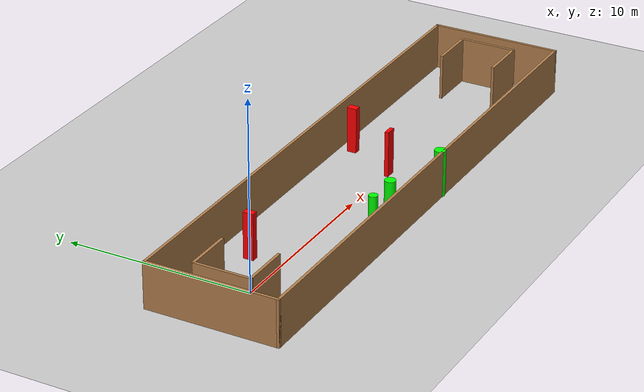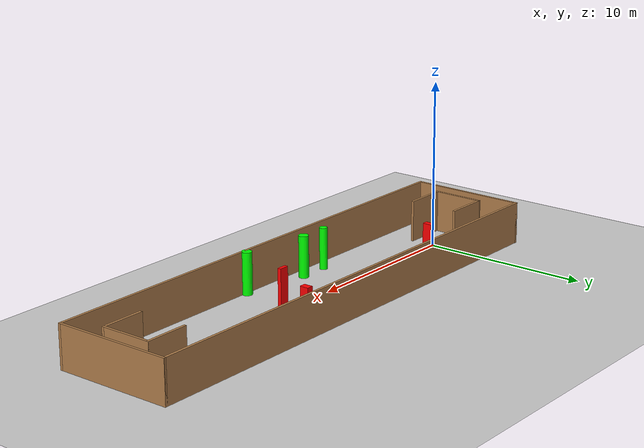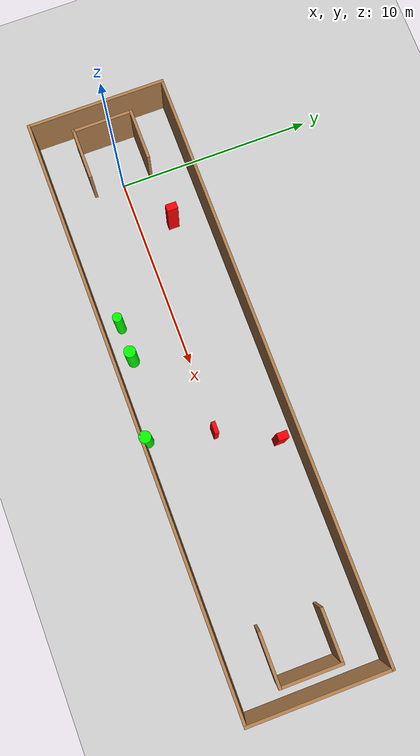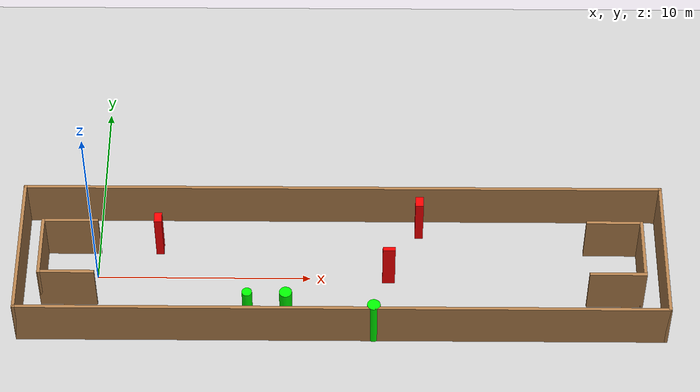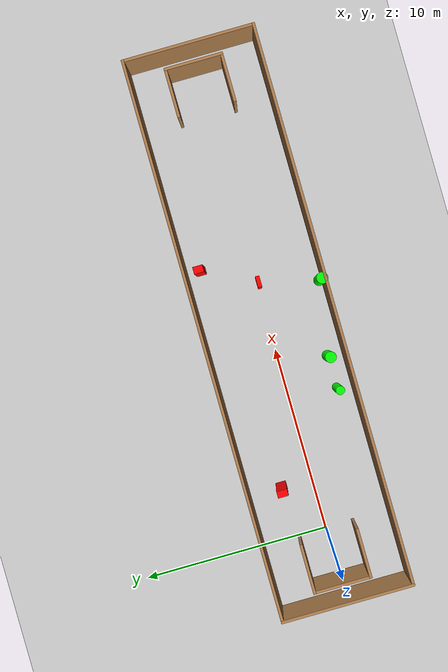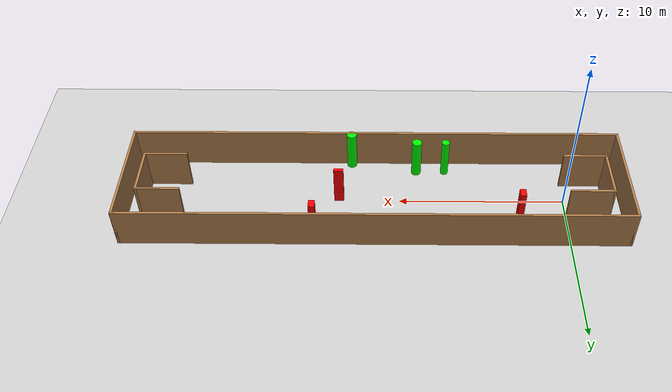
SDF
<sdf version="1.7">
 <world name="default">
  <light name="sun" type="directional">
   <pose>0 0 10 0 -0 0</pose>
   <diffuse>0.8 0.8 0.8 1</diffuse>
   <specular>0.2 0.2 0.2 1</specular>
   <attenuation>
    <range>1000</range>
    <constant>0.9</constant>
    <linear>0.01</linear>
    <quadratic>0.001</quadratic>
   </attenuation>
   <direction>-0.5 0.1 -0.9</direction>
   <spot><inner_angle>0</inner_angle><outer_angle>0</outer_angle><falloff>0</falloff></spot>
  </light>
  <model name="ground_plane">
   <static>1</static>
   <link name="link">
    <collision name="collision">
     <geometry><plane><normal>0 0 1</normal><size>100 100</size></plane></geometry>
     <surface>
      <contact><collide_bitmask>65535</collide_bitmask></contact>
      <friction><ode><mu>100</mu><mu2>50</mu2></ode></friction>
     </surface>
    </collision>
    <visual name="visual">
     <cast_shadows>0</cast_shadows>
     <geometry><plane><normal>0 0 1</normal><size>100 100</size></plane></geometry>
     <material>
      <script><uri>file://media/materials/scripts/gazebo.material</uri><name>Gazebo/Grey</name></script>
     </material>
    </visual>
   </link>
  </model>
  <gravity>0 0 -9.8</gravity>
  <magnetic_field>6e-06 2.3e-05 -4.2e-05</magnetic_field>
  <atmosphere type="adiabatic"/>
  <physics type="ode">
   <max_step_size>0.001</max_step_size>
   <real_time_factor>1</real_time_factor>
   <real_time_update_rate>1000</real_time_update_rate>
  </physics>
  <scene><ambient>0.4 0.4 0.4 1</ambient><background>0.7 0.7 0.7 1</background><shadows>1</shadows></scene>
  <spherical_coordinates>
   <surface_model>EARTH_WGS84</surface_model>
   <latitude_deg>0</latitude_deg>
   <longitude_deg>0</longitude_deg>
   <elevation>0</elevation>
   <heading_deg>0</heading_deg>
  </spherical_coordinates>
  <model name="my_base_walls">
   <link name="Wall_0">
    <collision name="Wall_0_Collision">
     <geometry><box><size>7.15 0.15 2.5</size></box></geometry>
     <pose>0 0 1.25 0 -0 0</pose>
    </collision>
    <visual name="Wall_0_Visual">
     <pose>0 0 1.25 0 -0 0</pose>
     <geometry><box><size>7.15 0.15 2.5</size></box></geometry>
     <material>
      <script><uri>file://media/materials/scripts/gazebo.material</uri><name>Gazebo/Wood</name></script>
      <ambient>1 1 1 1</ambient>
     </material>
     <meta><layer>0</layer></meta>
    </visual>
    <pose>-15 0 0 0 -0 1.5708</pose>
   </link>
   <link name="Wall_10">
    <collision name="Wall_10_Collision">
     <geometry><box><size>2.65 0.15 2.5</size></box></geometry>
     <pose>0 0 1.25 0 -0 0</pose>
    </collision>
    <visual name="Wall_10_Visual">
     <pose>0 0 1.25 0 -0 0</pose>
     <geometry><box><size>2.65 0.15 2.5</size></box></geometry>
     <material>
      <script><uri>file://media/materials/scripts/gazebo.material</uri><name>Gazebo/Wood</name></script>
      <ambient>1 1 1 1</ambient>
     </material>
     <meta><layer>0</layer></meta>
    </visual>
    <pose>-12.75 -1.5 0 0 -0 0</pose>
   </link>
   <link name="Wall_12">
    <collision name="Wall_12_Collision">
     <geometry><box><size>2.65 0.15 2.5</size></box></geometry>
     <pose>0 0 1.25 0 -0 0</pose>
    </collision>
    <visual name="Wall_12_Visual">
     <pose>0 0 1.25 0 -0 0</pose>
     <geometry><box><size>2.65 0.15 2.5</size></box></geometry>
     <material>
      <script><uri>file://media/materials/scripts/gazebo.material</uri><name>Gazebo/Wood</name></script>
      <ambient>1 1 1 1</ambient>
     </material>
     <meta><layer>0</layer></meta>
    </visual>
    <pose>-12.75 1.5 0 0 -0 0</pose>
   </link>
   <link name="Wall_14">
    <collision name="Wall_14_Collision">
     <geometry><box><size>3.15 0.15 2.5</size></box></geometry>
     <pose>0 0 1.25 0 -0 0</pose>
    </collision>
    <visual name="Wall_14_Visual">
     <pose>0 0 1.25 0 -0 0</pose>
     <geometry><box><size>3.15 0.15 2.5</size></box></geometry>
     <material>
      <script><uri>file://media/materials/scripts/gazebo.material</uri><name>Gazebo/Wood</name></script>
      <ambient>1 1 1 1</ambient>
     </material>
     <meta><layer>0</layer></meta>
    </visual>
    <pose>14 0 0 0 -0 -1.5708</pose>
   </link>
   <link name="Wall_15">
    <collision name="Wall_15_Collision">
     <geometry><box><size>2.65 0.15 2.5</size></box></geometry>
     <pose>0 0 1.25 0 -0 0</pose>
    </collision>
    <visual name="Wall_15_Visual">
     <pose>0 0 1.25 0 -0 0</pose>
     <geometry><box><size>2.65 0.15 2.5</size></box></geometry>
     <material>
      <script><uri>file://media/materials/scripts/gazebo.material</uri><name>Gazebo/Wood</name></script>
      <ambient>1 1 1 1</ambient>
     </material>
     <meta><layer>0</layer></meta>
    </visual>
    <pose>12.75 -1.5 0 0 -0 3.14159</pose>
   </link>
   <link name="Wall_17">
    <collision name="Wall_17_Collision">
     <geometry><box><size>2.65 0.15 2.5</size></box></geometry>
     <pose>0 0 1.25 0 -0 0</pose>
    </collision>
    <visual name="Wall_17_Visual">
     <pose>0 0 1.25 0 -0 0</pose>
     <geometry><box><size>2.65 0.15 2.5</size></box></geometry>
     <material>
      <script><uri>file://media/materials/scripts/gazebo.material</uri><name>Gazebo/Wood</name></script>
      <ambient>1 1 1 1</ambient>
     </material>
     <meta><layer>0</layer></meta>
    </visual>
    <pose>12.75 1.5 0 0 -0 3.14159</pose>
   </link>
   <link name="Wall_2">
    <collision name="Wall_2_Collision">
     <geometry><box><size>30.15 0.15 2.5</size></box></geometry>
     <pose>0 0 1.25 0 -0 0</pose>
    </collision>
    <visual name="Wall_2_Visual">
     <pose>0 0 1.25 0 -0 0</pose>
     <geometry><box><size>30.15 0.15 2.5</size></box></geometry>
     <material>
      <script><uri>file://media/materials/scripts/gazebo.material</uri><name>Gazebo/Wood</name></script>
      <ambient>1 1 1 1</ambient>
     </material>
     <meta><layer>0</layer></meta>
    </visual>
    <pose>-0 -3.5 0 0 -0 0</pose>
   </link>
   <link name="Wall_4">
    <collision name="Wall_4_Collision">
     <geometry><box><size>30.15 0.15 2.5</size></box></geometry>
     <pose>0 0 1.25 0 -0 0</pose>
    </collision>
    <visual name="Wall_4_Visual">
     <pose>0 0 1.25 0 -0 0</pose>
     <geometry><box><size>30.15 0.15 2.5</size></box></geometry>
     <material>
      <script><uri>file://media/materials/scripts/gazebo.material</uri><name>Gazebo/Wood</name></script>
      <ambient>1 1 1 1</ambient>
     </material>
     <meta><layer>0</layer></meta>
    </visual>
    <pose>-0 3.5 0 0 -0 0</pose>
   </link>
   <link name="Wall_6">
    <collision name="Wall_6_Collision">
     <geometry><box><size>7.15 0.15 2.5</size></box></geometry>
     <pose>0 0 1.25 0 -0 0</pose>
    </collision>
    <visual name="Wall_6_Visual">
     <pose>0 0 1.25 0 -0 0</pose>
     <geometry><box><size>7.15 0.15 2.5</size></box></geometry>
     <material>
      <script><uri>file://media/materials/scripts/gazebo.material</uri><name>Gazebo/Wood</name></script>
      <ambient>1 1 1 1</ambient>
     </material>
     <meta><layer>0</layer></meta>
    </visual>
    <pose>15 0 0 0 -0 -1.5708</pose>
   </link>
   <link name="Wall_9">
    <collision name="Wall_9_Collision">
     <geometry><box><size>3.15 0.15 2.5</size></box></geometry>
     <pose>0 0 1.25 0 -0 0</pose>
    </collision>
    <visual name="Wall_9_Visual">
     <pose>0 0 1.25 0 -0 0</pose>
     <geometry><box><size>3.15 0.15 2.5</size></box></geometry>
     <material>
      <script><uri>file://media/materials/scripts/gazebo.material</uri><name>Gazebo/Wood</name></script>
      <ambient>1 1 1 1</ambient>
     </material>
     <meta><layer>0</layer></meta>
    </visual>
    <pose>-14 0 0 0 -0 -1.5708</pose>
   </link>
   <static>1</static>
   <pose>11.5 0 0 0 -0 0</pose>
  </model>
  <model name="cylinder1">
   <static>1</static>
   <link name="link">
    <inertial>
     <mass>1</mass>
     <inertia><ixx>0.5</ixx><ixy>0</ixy><ixz>0</ixz><iyy>0.5</iyy><iyz>0</iyz><izz>1</izz></inertia>
    </inertial>
    <collision name="collision">
     <geometry><cylinder><radius>0.2341814493244711</radius><length>2.5</length></cylinder></geometry>
    </collision>
    <visual name="visual">
     <geometry><cylinder><radius>0.2341814493244711</radius><length>2.5</length></cylinder></geometry>
     <material>
      <ambient>0 1 0 1</ambient>
      <diffuse>0 1 0 1</diffuse>
      <specular>0.1 0.1 0.1 1</specular>
      <emissive>0 0 0 0</emissive>
     </material>
    </visual>
   </link>
   <pose>7.156266499600841 -2.6292482852647296 1.25 0 0 0</pose>
  </model>
  <model name="cylinder2">
   <static>1</static>
   <link name="link">
    <inertial>
     <mass>1</mass>
     <inertia><ixx>0.5</ixx><ixy>0</ixy><ixz>0</ixz><iyy>0.5</iyy><iyz>0</iyz><izz>1</izz></inertia>
    </inertial>
    <collision name="collision">
     <geometry><cylinder><radius>0.2943175461696958</radius><length>2.5</length></cylinder></geometry>
    </collision>
    <visual name="visual">
     <geometry><cylinder><radius>0.2943175461696958</radius><length>2.5</length></cylinder></geometry>
     <material>
      <ambient>0 1 0 1</ambient>
      <diffuse>0 1 0 1</diffuse>
      <specular>0.1 0.1 0.1 1</specular>
      <emissive>0 0 0 0</emissive>
     </material>
    </visual>
   </link>
   <pose>8.930417481131803 -2.6262845504566537 1.25 0 0 0</pose>
  </model>
  <model name="cylinder3">
   <static>1</static>
   <link name="link">
    <inertial>
     <mass>1</mass>
     <inertia><ixx>0.5</ixx><ixy>0</ixy><ixz>0</ixz><iyy>0.5</iyy><iyz>0</iyz><izz>1</izz></inertia>
    </inertial>
    <collision name="collision">
     <geometry><cylinder><radius>0.3023575027122495</radius><length>2.5</length></cylinder></geometry>
    </collision>
    <visual name="visual">
     <geometry><cylinder><radius>0.3023575027122495</radius><length>2.5</length></cylinder></geometry>
     <material>
      <ambient>0 1 0 1</ambient>
      <diffuse>0 1 0 1</diffuse>
      <specular>0.1 0.1 0.1 1</specular>
      <emissive>0 0 0 0</emissive>
     </material>
    </visual>
   </link>
   <pose>12.974777211689752 -3.3188723893788583 1.25 0 0 0</pose>
  </model>
  <model name="box1">
   <static>1</static>
   <link name="link">
    <inertial>
     <mass>1</mass>
     <inertia><ixx>0.083</ixx><ixy>0</ixy><ixz>0</ixz><iyy>0.083</iyy><iyz>0</iyz><izz>0.083</izz></inertia>
    </inertial>
    <collision name="collision">
     <geometry><box><size>0.3802012603922753 0.5215871782783318 2.5</size></box></geometry>
    </collision>
    <visual name="visual">
     <geometry><box><size>0.3802012603922753 0.5215871782783318 2.5</size></box></geometry>
     <material>
      <ambient>1 0 0 1</ambient>
      <diffuse>1 0 0 1</diffuse>
      <specular>0.1 0.1 0.1 1</specular>
      <emissive>0 0 0 0</emissive>
     </material>
    </visual>
    <sensor name="my_contact" type="contact">
     <contact><collision>box_collision</collision><topic>__default_topic__</topic></contact>
    </sensor>
   </link>
   <pose>15.139529147811986 2.694580228821615 1.25 0 0 0</pose>
  </model>
  <model name="box2">
   <static>1</static>
   <link name="link">
    <inertial>
     <mass>1</mass>
     <inertia><ixx>0.083</ixx><ixy>0</ixy><ixz>0</ixz><iyy>0.083</iyy><iyz>0</iyz><izz>0.083</izz></inertia>
    </inertial>
    <collision name="collision">
     <geometry><box><size>0.5843756767483786 0.21250397522210748 2.5</size></box></geometry>
    </collision>
    <visual name="visual">
     <geometry><box><size>0.5843756767483786 0.21250397522210748 2.5</size></box></geometry>
     <material>
      <ambient>1 0 0 1</ambient>
      <diffuse>1 0 0 1</diffuse>
      <specular>0.1 0.1 0.1 1</specular>
      <emissive>0 0 0 0</emissive>
     </material>
    </visual>
    <sensor name="my_contact" type="contact">
     <contact><collision>box_collision</collision><topic>__default_topic__</topic></contact>
    </sensor>
   </link>
   <pose>13.690693089003267 -0.12089679636460016 1.25 0 0 0</pose>
  </model>
  <model name="box3">
   <static>1</static>
   <link name="link">
    <inertial>
     <mass>1</mass>
     <inertia><ixx>0.083</ixx><ixy>0</ixy><ixz>0</ixz><iyy>0.083</iyy><iyz>0</iyz><izz>0.083</izz></inertia>
    </inertial>
    <collision name="collision">
     <geometry><box><size>0.3550471042560215 0.5549219028850039 2.5</size></box></geometry>
    </collision>
    <visual name="visual">
     <geometry><box><size>0.3550471042560215 0.5549219028850039 2.5</size></box></geometry>
     <material>
      <ambient>1 0 0 1</ambient>
      <diffuse>1 0 0 1</diffuse>
      <specular>0.1 0.1 0.1 1</specular>
      <emissive>0 0 0 0</emissive>
     </material>
    </visual>
    <sensor name="my_contact" type="contact">
     <contact><collision>box_collision</collision><topic>__default_topic__</topic></contact>
    </sensor>
   </link>
   <pose>2.8638778507541094 1.6870664670620217 1.25 0 0 0</pose>
  </model>
 </world>
</sdf>
